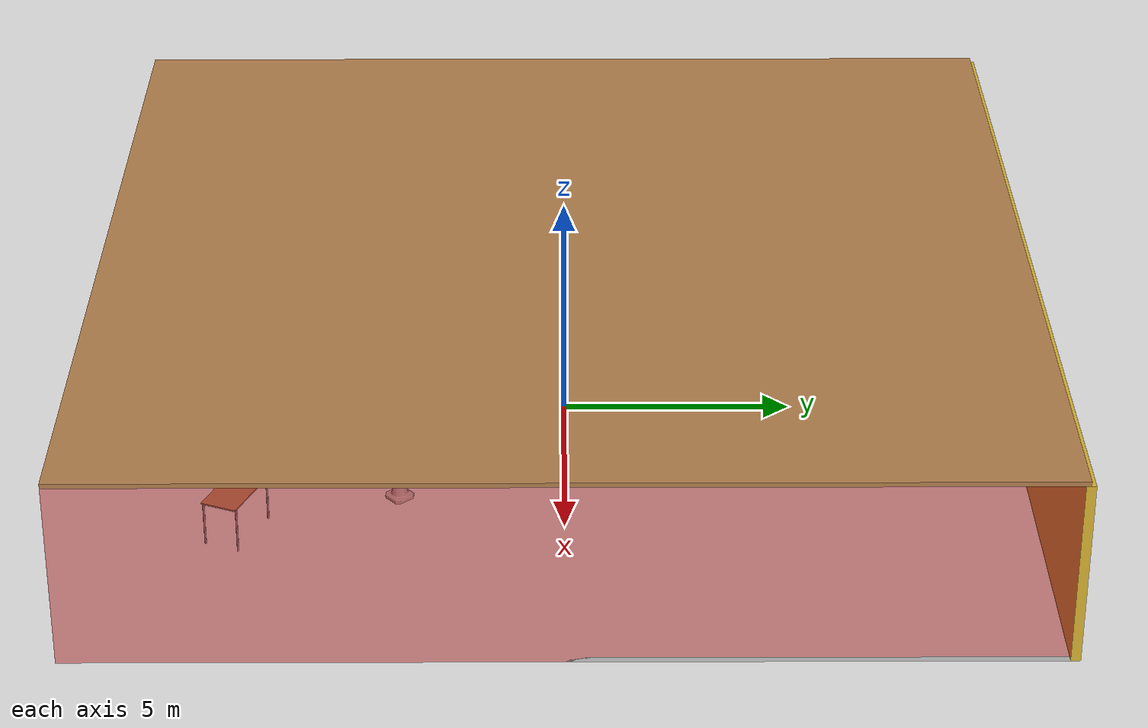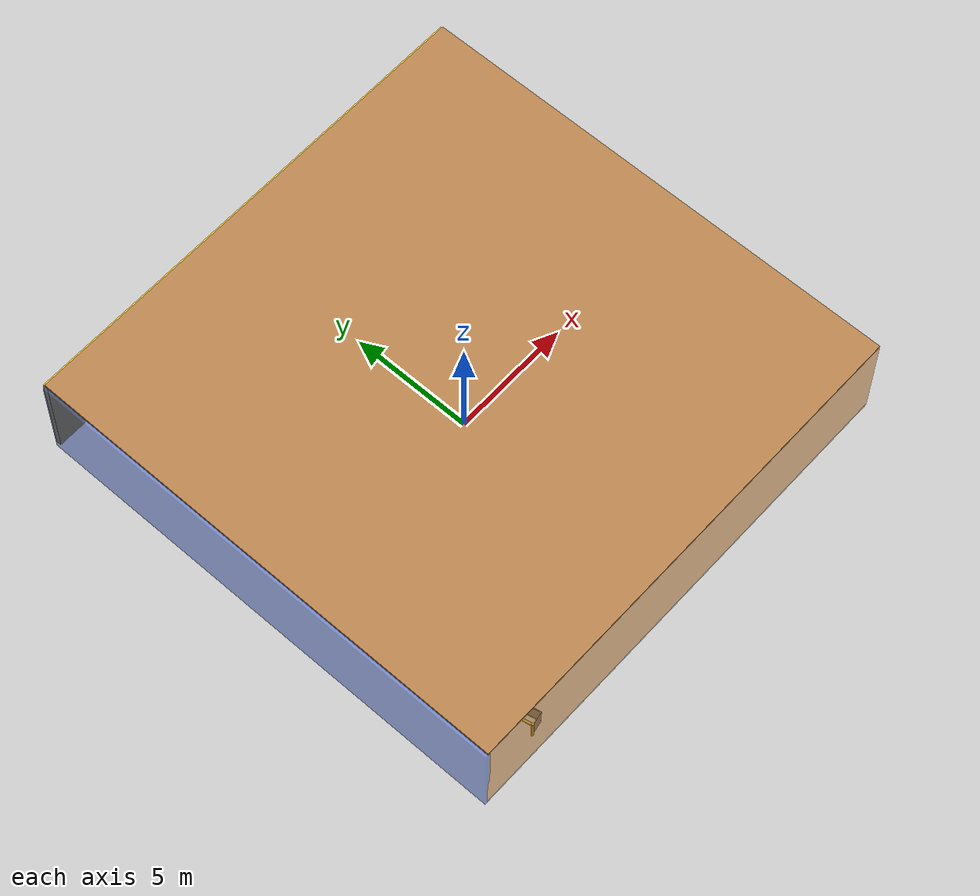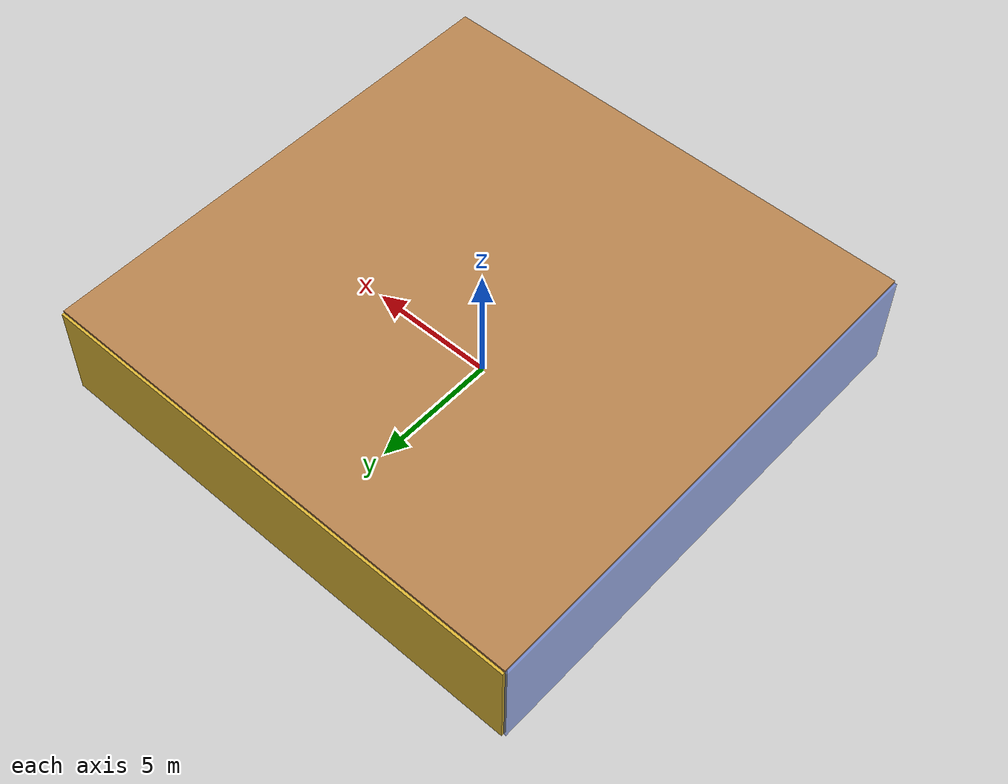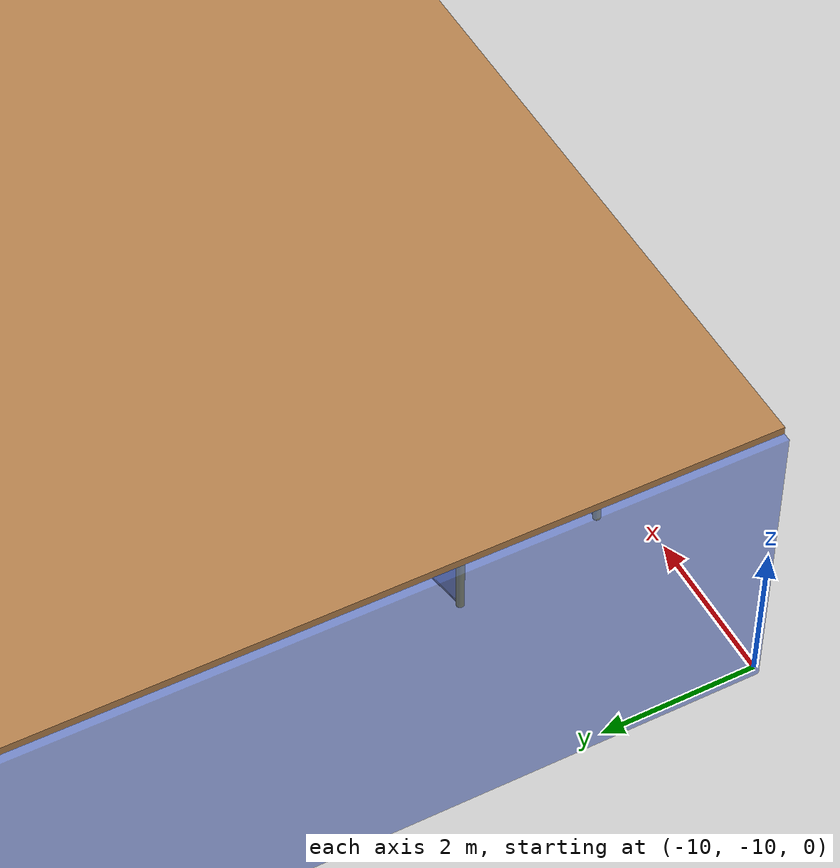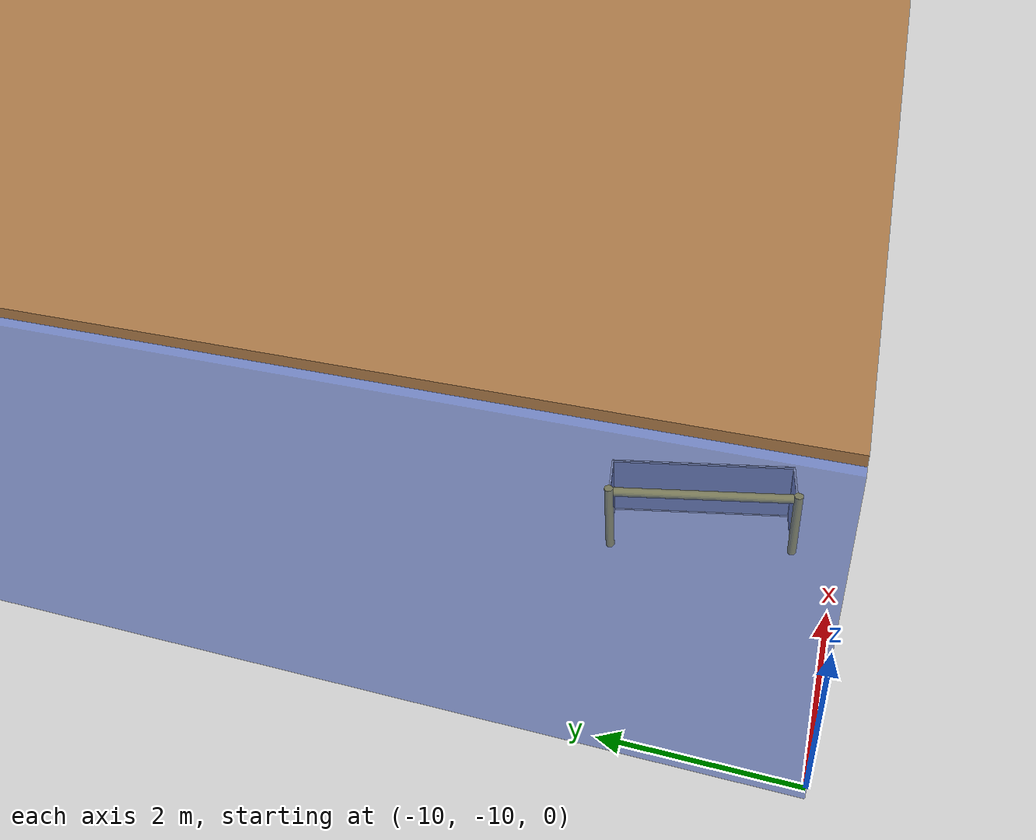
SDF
<sdf version="1.4">
 <world name="default">
  <physics type="ode">
   <max_step_size>0.001</max_step_size>
   <real_time_factor>1</real_time_factor>
   <real_time_update_rate>1000</real_time_update_rate>
   <gravity>0 0 -9.8</gravity>
  </physics>
  <scene><ambient>0.4 0.4 0.4 1</ambient><background>0.7 0.7 0.7 1</background><shadows>1</shadows></scene>
  <model name="Surrounding">
   <static>1</static>
   <link name="Ceiling">
    <collision name="Ceiling_Collision"><geometry><box><size>20 20 0.1</size></box></geometry></collision>
    <visual name="Ceiling_Visual">
     <geometry><box><size>20 20 0.1</size></box></geometry>
     <material>
      <script><uri>file://media/materials/scripts/gazebo.material</uri><name>Gazebo/Wood</name></script>
     </material>
    </visual>
    <pose>0 0 4.05 0 0 0</pose>
   </link>
   <link name="Wall_South">
    <collision name="Wall_South_Collision">
     <geometry><box><size>20 0 4</size></box></geometry>
     <pose>0 0 2 0 -0 0</pose>
    </collision>
    <visual name="Wall_South_Visual">
     <pose>0 0 2 0 -0 0</pose>
     <geometry><box><size>20 0 4</size></box></geometry>
     <material>
      <script>
       <uri>file://media/materials/scripts/gazebo.material</uri>
       <name>Gazebo/OrangeTransparent</name>
      </script>
     </material>
    </visual>
    <velocity_decay><linear>0</linear><angular>0</angular></velocity_decay>
    <pose>0 -10 0 0 -0 0</pose>
   </link>
   <link name="Wall_East">
    <collision name="Wall_21_Collision">
     <geometry><box><size>20 0 4</size></box></geometry>
     <pose>0 0 2 0 -0 0</pose>
    </collision>
    <visual name="Wall_21_Visual">
     <pose>0 0 2 0 -0 0</pose>
     <geometry><box><size>20 0 4</size></box></geometry>
     <material>
      <script><uri>file://media/materials/scripts/gazebo.material</uri><name>Gazebo/RedTransparent</name></script>
     </material>
    </visual>
    <velocity_decay><linear>0</linear><angular>0</angular></velocity_decay>
    <pose>10 0 0 0 -0 1.5708</pose>
   </link>
   <link name="Wall_North">
    <collision name="Wall_22_Collision">
     <geometry><box><size>20 0.2 4</size></box></geometry>
     <pose>0 0 2 0 -0 0</pose>
    </collision>
    <visual name="Wall_22_Visual">
     <pose>0 0 2 0 -0 0</pose>
     <geometry><box><size>20 0.2 4</size></box></geometry>
     <material>
      <script><uri>file://media/materials/scripts/gazebo.material</uri><name>Gazebo/Gold</name></script>
     </material>
    </visual>
    <velocity_decay><linear>0</linear><angular>0</angular></velocity_decay>
    <pose>0 10 0 0 -0 0</pose>
   </link>
   <link name="Wall_West">
    <collision name="Wall_23_Collision">
     <geometry><box><size>20 0.2 4</size></box></geometry>
     <pose>0 0 2 0 -0 0</pose>
    </collision>
    <visual name="Wall_23_Visual">
     <pose>0 0 2 0 -0 0</pose>
     <geometry><box><size>20 0.2 4</size></box></geometry>
     <material>
      <script><uri>file://media/materials/scripts/gazebo.material</uri><name>Gazebo/BlueTransparent</name></script>
     </material>
    </visual>
    <velocity_decay><linear>0</linear><angular>0</angular></velocity_decay>
    <pose>-10 0 0 0 0 -1.5708</pose>
   </link>
   <link name="Ground_link">
    <collision name="collision">
     <pose>0 0 .05 0 -0 0</pose>
     <geometry><box><size>20 20 0.1</size></box></geometry>
    </collision>
    <visual name="visual">
     <pose>0 0 .05 0 -0 0</pose>
     <geometry><box><size>20 20 0.1</size></box></geometry>
     <material>
      <script><uri>file://media/materials/scripts/gazebo.material</uri><name>Gazebo/GreyTransparent</name></script>
     </material>
    </visual>
   </link>
   <static>1</static>
  </model>
  <spherical_coordinates>
   <surface_model>EARTH_WGS84</surface_model>
   <latitude_deg>0</latitude_deg>
   <longitude_deg>0</longitude_deg>
   <elevation>0</elevation>
   <heading_deg>0</heading_deg>
  </spherical_coordinates>
  <light name="lightball_0" type="diffuse">
   <diffuse>0.8 0.8 0.8 1</diffuse>
   <specular>0.2 0.2 0.2 1</specular>
   <attenuation>
    <range>100</range>
    <constant>0.7</constant>
    <linear>0.01</linear>
    <quadratic>0.001</quadratic>
   </attenuation>
   <direction>-0.5 0.1 -0.9</direction>
   <pose>5.19913263769 -2.37422203074 1.56323866675 0 0 0</pose>
  </light>
  <light name="lightball_1" type="diffuse">
   <diffuse>0.8 0.8 0.8 1</diffuse>
   <specular>0.2 0.2 0.2 1</specular>
   <attenuation>
    <range>100</range>
    <constant>0.7</constant>
    <linear>0.01</linear>
    <quadratic>0.001</quadratic>
   </attenuation>
   <direction>-0.5 0.1 -0.9</direction>
   <pose>4.43396000674 8.18471676319 1.24994064521 0 0 0</pose>
  </light>
  <light name="lightball_2" type="diffuse">
   <diffuse>0.8 0.8 0.8 1</diffuse>
   <specular>0.2 0.2 0.2 1</specular>
   <attenuation>
    <range>100</range>
    <constant>0.7</constant>
    <linear>0.01</linear>
    <quadratic>0.001</quadratic>
   </attenuation>
   <direction>-0.5 0.1 -0.9</direction>
   <pose>-4.90626045387 5.05908365188 1.68817077467 0 0 0</pose>
  </light>
  <light name="lightball_3" type="diffuse">
   <diffuse>0.8 0.8 0.8 1</diffuse>
   <specular>0.2 0.2 0.2 1</specular>
   <attenuation>
    <range>100</range>
    <constant>0.7</constant>
    <linear>0.01</linear>
    <quadratic>0.001</quadratic>
   </attenuation>
   <direction>-0.5 0.1 -0.9</direction>
   <pose>-9.10139769761 2.74893480889 0.508741484384 0 0 0</pose>
  </light>
  <light name="lightball_4" type="diffuse">
   <diffuse>0.8 0.8 0.8 1</diffuse>
   <specular>0.2 0.2 0.2 1</specular>
   <attenuation>
    <range>100</range>
    <constant>0.7</constant>
    <linear>0.01</linear>
    <quadratic>0.001</quadratic>
   </attenuation>
   <direction>-0.5 0.1 -0.9</direction>
   <pose>-0.38559347171 -0.747587480289 0.553701585283 0 0 0</pose>
  </light>
  <light name="lightball_5" type="diffuse">
   <diffuse>0.8 0.8 0.8 1</diffuse>
   <specular>0.2 0.2 0.2 1</specular>
   <attenuation>
    <range>100</range>
    <constant>0.7</constant>
    <linear>0.01</linear>
    <quadratic>0.001</quadratic>
   </attenuation>
   <direction>-0.5 0.1 -0.9</direction>
   <pose>-0.486525455753 -9.07425668325 3.84871061582 0 0 0</pose>
  </light>
  <include>
   <uri>model://robocup_3Dsim_goal</uri>
   <pose>-7.4349544588 -8.49211096401 0 0 0 0.196979634813</pose>
  </include>
  <include><uri>model://cabinet</uri><pose>-3.89297318556 -2.15869990579 0 0 0 0.64965029445</pose></include>
  <include><uri>model://table</uri><pose>5.15663218343 -6.86182700937 0 0 0 2.74402000217</pose></include>
  <include>
   <uri>model://construction_cone</uri>
   <pose>3.80778701308 -3.51531150472 0 0 0 2.28469948093</pose>
  </include>
 </world>
</sdf>

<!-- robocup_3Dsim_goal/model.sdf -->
<sdf version="1.5">
  <model name="robocup_3d_goal">
    <static>true</static>
    <link name="left_post">
      <pose>0 1.05 0.45 0 0 0</pose>
      <collision name="collision">
        <geometry>
          <cylinder>
            <radius>0.05</radius>
            <length>0.9</length>
          </cylinder>
        </geometry>
      </collision>
      <visual name="visual">
        <geometry>
          <cylinder>
            <radius>0.05</radius>
            <length>0.9</length>
          </cylinder>
        </geometry>
        <material>
          <script>
            <uri>file://media/materials/scripts/gazebo.material</uri>
            <name>Gazebo/ZincYellow</name>
          </script>
        </material>
      </visual>
    </link>
    <link name="left_support_horiz_lower">
      <pose>0.30 1.05 0.01 0 0 0</pose>
      <collision name="collision">
        <geometry>
          <box>
            <size>0.50 0.02 0.02</size>
          </box>
        </geometry>
      </collision>
      <visual name="visual">
        <geometry>
          <box>
            <size>0.50 0.02 0.02</size>
          </box>
        </geometry>
        <material>
          <script>
            <uri>file://media/materials/scripts/gazebo.material</uri>
            <name>Gazebo/White</name>
          </script>
        </material>
      </visual>
    </link>
    <link name="left_support_horiz_upper">
      <pose>0.30 1.05 0.79 0 0 0</pose>
      <collision name="collision">
        <geometry>
          <box>
            <size>0.50 0.02 0.02</size>
          </box>
        </geometry>
      </collision>
      <visual name="visual">
        <geometry>
          <box>
            <size>0.50 0.02 0.02</size>
          </box>
        </geometry>
        <material>
          <script>
            <uri>file://media/materials/scripts/gazebo.material</uri>
            <name>Gazebo/White</name>
          </script>
        </material>
      </visual>
    </link>
    <link name="left_support_vertical">
      <pose>0.56 1.05 0.4 0 1.5708 0</pose>
      <collision name="collision">
        <geometry>
          <box>
            <size>0.80 0.02 0.02</size>
          </box>
        </geometry>
      </collision>
      <visual name="visual">
        <geometry>
          <box>
            <size>0.80 0.02 0.02</size>
          </box>
        </geometry>
        <material>
          <script>
            <uri>file://media/materials/scripts/gazebo.material</uri>
            <name>Gazebo/White</name>
          </script>
        </material>
      </visual>
    </link>
    <link name="right_support_horiz_lower">
      <pose>0.30 -1.05 0.01 0 0 0</pose>
      <collision name="collision">
        <geometry>
          <box>
            <size>0.50 0.02 0.02</size>
          </box>
        </geometry>
      </collision>
      <visual name="visual">
        <geometry>
          <box>
            <size>0.50 0.02 0.02</size>
          </box>
        </geometry>
        <material>
          <script>
            <uri>file://media/materials/scripts/gazebo.material</uri>
            <name>Gazebo/White</name>
          </script>
        </material>
      </visual>
    </link>
    <link name="right_support_horiz_upper">
      <pose>0.30 -1.05 0.79 0 0 0</pose>
      <collision name="collision">
        <geometry>
          <box>
            <size>0.50 0.02 0.02</size>
          </box>
        </geometry>
      </collision>
      <visual name="visual">
        <geometry>
          <box>
            <size>0.50 0.02 0.02</size>
          </box>
        </geometry>
        <material>
          <script>
            <uri>file://media/materials/scripts/gazebo.material</uri>
            <name>Gazebo/White</name>
          </script>
        </material>
      </visual>
    </link>
    <link name="right_support_vertical">
      <pose>0.56 -1.05 0.4 0 1.5708 0</pose>
      <collision name="collision">
        <geometry>
          <box>
            <size>0.80 0.02 0.02</size>
          </box>
        </geometry>
      </collision>
      <visual name="visual">
        <geometry>
          <box>
            <size>0.80 0.02 0.02</size>
          </box>
        </geometry>
        <material>
          <script>
            <uri>file://media/materials/scripts/gazebo.material</uri>
            <name>Gazebo/White</name>
          </script>
        </material>
      </visual>
    </link>
    <link name="center_support_horiz_lower">
      <pose>0.56 0 0.01 0 1.5708 0</pose>
      <collision name="collision">
        <geometry>
          <box>
            <size>0.02 2.08 0.02</size>
          </box>
        </geometry>
      </collision>
      <visual name="visual">
        <geometry>
          <box>
            <size>0.02 2.08 0.02</size>
          </box>
        </geometry>
        <material>
          <script>
            <uri>file://media/materials/scripts/gazebo.material</uri>
            <name>Gazebo/White</name>
          </script>
        </material>
      </visual>
    </link>
    <link name="center_support_horiz_upper">
      <pose>0.56 0 0.79 0 1.5708 0</pose>
      <collision name="collision">
        <geometry>
          <box>
            <size>0.02 2.08 0.02</size>
          </box>
        </geometry>
      </collision>
      <visual name="visual">
        <geometry>
          <box>
            <size>0.02 2.08 0.02</size>
          </box>
        </geometry>
        <material>
          <script>
            <uri>file://media/materials/scripts/gazebo.material</uri>
            <name>Gazebo/White</name>
          </script>
        </material>
      </visual>
    </link>
    <link name="right_post">
      <pose>0 -1.05 0.45 0 0 0</pose>
      <collision name="collision">
        <geometry>
          <cylinder>
            <radius>0.05</radius>
            <length>0.9</length>
          </cylinder>
        </geometry>
      </collision>
      <visual name="visual">
        <geometry>
          <cylinder>
            <radius>0.05</radius>
            <length>0.9</length>
          </cylinder>
        </geometry>
        <material>
          <script>
            <uri>file://media/materials/scripts/gazebo.material</uri>
            <name>Gazebo/ZincYellow</name>
          </script>
        </material>
      </visual>
    </link>
    <link name="crossbar">
      <pose>0 0 0.85 1.57 1.57 0</pose>
      <collision name="collision">
        <geometry>
          <cylinder>
            <radius>0.05</radius>
            <length>2.0</length>
          </cylinder>
        </geometry>
      </collision>
      <visual name="visual">
        <geometry>
          <cylinder>
            <radius>0.05</radius>
            <length>2.0</length>
          </cylinder>
        </geometry>
        <material>
          <script>
            <uri>file://media/materials/scripts/gazebo.material</uri>
            <name>Gazebo/ZincYellow</name>
          </script>
        </material>
      </visual>
    </link>
    <link name="center_net">
      <pose>0.56 0 0.40 0 0 0</pose>
      <collision name="collision">
        <geometry>
          <box>
            <size>0.01 2.1 0.80</size>
          </box>
        </geometry>
      </collision>
      <visual name="visual">
        <geometry>
          <box>
            <size>0.01 2.1 0.80</size>
          </box>
        </geometry>
        <material>
          <script>
            <uri>model://../model_source/models/robocup09_spl_field/materials/scripts/</uri>
            <uri>model://../model_source/models/robocup09_spl_field/materials/textures/</uri>
            <name>RoboCup/Net</name>
          </script>
        </material>
      </visual>
    </link>
    <link name="left_net">
      <pose>0.30 1.05 0.40 0 0 0</pose>
      <collision name="collision">
        <geometry>
          <box>
            <size>0.50 0.01 0.76</size>
          </box>
        </geometry>
      </collision>
      <visual name="visual">
        <geometry>
          <box>
            <size>0.50 0.01 0.76</size>
          </box>
        </geometry>
        <material>
          <script>
            <uri>model://../model_source/models/robocup09_spl_field/materials/scripts/</uri>
            <uri>model://../model_source/models/robocup09_spl_field/materials/textures/</uri>
            <name>RoboCup/Net</name>
          </script>
        </material>
      </visual>
    </link>
    <link name="right_net">
      <pose>0.30 -1.05 0.40 0 0 0</pose>
      <collision name="collision">
        <geometry>
          <box>
            <size>0.50 0.01 0.76</size>
          </box>
        </geometry>
      </collision>
      <visual name="visual">
        <geometry>
          <box>
            <size>0.50 0.01 0.76</size>
          </box>
        </geometry>
        <material>
          <script>
            <uri>model://../model_source/models/robocup09_spl_field/materials/scripts/</uri>
            <uri>model://../model_source/models/robocup09_spl_field/materials/textures/</uri>
            <name>RoboCup/Net</name>
          </script>
        </material>
      </visual>
    </link>
  </model>
</sdf>

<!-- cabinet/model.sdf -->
<sdf version="1.5">
  <model name="cabinet">
    <static>true</static>
    <link name="cabinet_bottom_plate">
      <inertial>
        <pose>0 0 -1 0 0 0</pose>
        <inertia>
          <ixx>2.050000</ixx>
          <ixy>0</ixy>
          <ixz>0</ixz>
          <iyy>2.050000</iyy>
          <iyz>0</iyz>
          <izz>2.050000</izz>
        </inertia>
        <mass>25.000000</mass>
      </inertial>
      <collision name="cabinet_bottom_plate_geom">
        <pose>0 0 0.010000 0 0 0</pose>
        <geometry>
          <box>
            <size>0.450000 0.450000 0.020000</size>
          </box>
        </geometry>
      </collision>
      <visual name="cabinet_bottom_plate_geom_visual">
        <pose>0 0 0.010000 0 0 0</pose>
        <geometry>
          <box>
            <size>0.450000 0.450000 0.020000</size>
          </box>
        </geometry>
        <material>
          <script>
            <uri>model://media/materials/scripts/gazebo.material</uri>
            <name>Gazebo/Wood</name>
          </script>
        </material>
      </visual>
      <collision name="cabinet_bottom_plate_geom_cabinet_back_plate">
        <pose>0.235000 0 0.510000 0 0 0</pose>
        <geometry>
          <box>
            <size>0.020000 0.450000 1.020000</size>
          </box>
        </geometry>
      </collision>
      <visual name="cabinet_bottom_plate_geom_cabinet_back_plate_visual">
        <pose>0.235000 0 0.510000 0 0 0</pose>
        <geometry>
          <box>
            <size>0.020000 0.450000 1.020000</size>
          </box>
        </geometry>
        <material>
          <script>
            <uri>model://media/materials/scripts/gazebo.material</uri>
            <name>Gazebo/Wood</name>
          </script>
        </material>
      </visual>
      <collision name="cabinet_bottom_plate_geom_cabinet_left_plate">
        <pose>0 0.235000 0.510000 0 0 0</pose>
        <geometry>
          <box>
            <size>0.450000 0.020000 1.020000</size>
          </box>
        </geometry>
      </collision>
      <visual name="cabinet_bottom_plate_geom_cabinet_left_plate_visual">
        <pose>0 0.235000 0.510000 0 0 0</pose>
        <geometry>
          <box>
            <size>0.450000 0.020000 1.020000</size>
          </box>
        </geometry>
        <material>
          <script>
            <uri>model://media/materials/scripts/gazebo.material</uri>
            <name>Gazebo/Wood</name>
          </script>
        </material>
      </visual>
      <collision name="cabinet_bottom_plate_geom_cabinet_middle_plate">
        <pose>0 0 0.510000 0 0 0</pose>
        <geometry>
          <box>
            <size>0.450000 0.450000 0.020000</size>
          </box>
        </geometry>
      </collision>
      <visual name="cabinet_bottom_plate_geom_cabinet_middle_plate_visual">
        <pose>0 0 0.510000 0 0 0</pose>
        <geometry>
          <box>
            <size>0.450000 0.450000 0.020000</size>
          </box>
        </geometry>
        <material>
          <script>
            <uri>model://media/materials/scripts/gazebo.material</uri>
            <name>Gazebo/Wood</name>
          </script>
        </material>
      </visual>
      <collision name="cabinet_bottom_plate_geom_cabinet_right_plate">
        <pose>0 -0.235000 0.510000 0 0 0</pose>
        <geometry>
          <box>
            <size>0.450000 0.020000 1.020000</size>
          </box>
        </geometry>
      </collision>
      <visual name="cabinet_bottom_plate_geom_cabinet_right_plate_visual">
        <pose>0 -0.235000 0.510000 0 0 0</pose>
        <geometry>
          <box>
            <size>0.450000 0.020000 1.020000</size>
          </box>
        </geometry>
        <material>
          <script>
            <uri>model://media/materials/scripts/gazebo.material</uri>
            <name>Gazebo/Wood</name>
          </script>
        </material>
      </visual>
      <collision name="cabinet_bottom_plate_geom_cabinet_top_plate">
        <pose>0 0 1.010000 0 0 0</pose>
        <geometry>
          <box>
            <size>0.450000 0.450000 0.020000</size>
          </box>
        </geometry>
      </collision>
      <visual name="cabinet_bottom_plate_geom_cabinet_top_plate_visual">
        <pose>0 0 1.010000 0 0 0</pose>
        <geometry>
          <box>
            <size>0.450000 0.450000 0.020000</size>
          </box>
        </geometry>
        <material>
          <script>
            <uri>model://media/materials/scripts/gazebo.material</uri>
            <name>Gazebo/Wood</name>
          </script>
        </material>
      </visual>
    </link>
  </model>
</sdf>

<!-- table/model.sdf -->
<sdf version="1.5">
  <model name="table">
    <static>true</static>
    <link name="link">
      <collision name="surface">
        <pose>0 0 1.0 0 0 0</pose>
        <geometry>
          <box>
            <size>1.5 0.8 0.03</size>
          </box>
        </geometry>
        <surface>
          <friction>
            <ode>
              <mu>0.6</mu>
              <mu2>0.6</mu2>
            </ode>
          </friction>
        </surface>
      </collision>
      <visual name="visual1">
        <pose>0 0 1.0 0 0 0</pose>
        <geometry>
          <box>
            <size>1.5 0.8 0.03</size>
          </box>
        </geometry>
        <material>
          <script>
            <uri>model://media/materials/scripts/gazebo.material</uri>
            <name>Gazebo/Wood</name>
          </script>
        </material>
      </visual>
      <collision name="front_left_leg">
        <pose>0.68 0.38 0.5 0 0 0</pose>
        <geometry>
          <cylinder>
            <radius>0.02</radius>
            <length>1.0</length>
          </cylinder>
        </geometry>
      </collision>
      <visual name="front_left_leg">
        <pose>0.68 0.38 0.5 0 0 0</pose>
        <geometry>
          <cylinder>
            <radius>0.02</radius>
            <length>1.0</length>
          </cylinder>
        </geometry>
        <material>
          <script>
            <uri>model://media/materials/scripts/gazebo.material</uri>
            <name>Gazebo/Grey</name>
          </script>
        </material>
      </visual>
      <collision name="front_right_leg">
        <pose>0.68 -0.38 0.5 0 0 0</pose>
        <geometry>
          <cylinder>
            <radius>0.02</radius>
            <length>1.0</length>
          </cylinder>
        </geometry>
      </collision>
      <visual name="front_right_leg">
        <pose>0.68 -0.38 0.5 0 0 0</pose>
        <geometry>
          <cylinder>
            <radius>0.02</radius>
            <length>1.0</length>
          </cylinder>
        </geometry>
        <material>
          <script>
            <uri>model://media/materials/scripts/gazebo.material</uri>
            <name>Gazebo/Grey</name>
          </script>
        </material>
      </visual>
      <collision name="back_right_leg">
        <pose>-0.68 -0.38 0.5 0 0 0</pose>
        <geometry>
          <cylinder>
            <radius>0.02</radius>
            <length>1.0</length>
          </cylinder>
        </geometry>
      </collision>
      <visual name="back_right_leg">
        <pose>-0.68 -0.38 0.5 0 0 0</pose>
        <geometry>
          <cylinder>
            <radius>0.02</radius>
            <length>1.0</length>
          </cylinder>
        </geometry>
        <material>
          <script>
            <uri>model://media/materials/scripts/gazebo.material</uri>
            <name>Gazebo/Grey</name>
          </script>
        </material>
      </visual>
      <collision name="back_left_leg">
        <pose>-0.68 0.38 0.5 0 0 0</pose>
        <geometry>
          <cylinder>
            <radius>0.02</radius>
            <length>1.0</length>
          </cylinder>
        </geometry>
      </collision>
      <visual name="back_left_leg">
        <pose>-0.68 0.38 0.5 0 0 0</pose>
        <geometry>
          <cylinder>
            <radius>0.02</radius>
            <length>1.0</length>
          </cylinder>
        </geometry>
        <material>
          <script>
            <uri>model://media/materials/scripts/gazebo.material</uri>
            <name>Gazebo/Grey</name>
          </script>
        </material>
      </visual>
    </link>
  </model>
</sdf>

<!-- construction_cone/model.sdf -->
<sdf version="1.5">
  <model name="Construction Cone">
    <link name="link">
      <collision name="collision">
        <geometry>
          <mesh>
            <scale>10 10 10</scale>
            <uri>file://isr-testbed/construction_cone/meshes/construction_cone.dae</uri>
          </mesh>
        </geometry>
      </collision>
      <visual name="visual">
        <geometry>
          <mesh>
            <scale>10 10 10</scale>
            <uri>file://isr-testbed/construction_cone/meshes/construction_cone.dae</uri>
          </mesh>
        </geometry>
      </visual>
    </link>
  </model>
</sdf>
